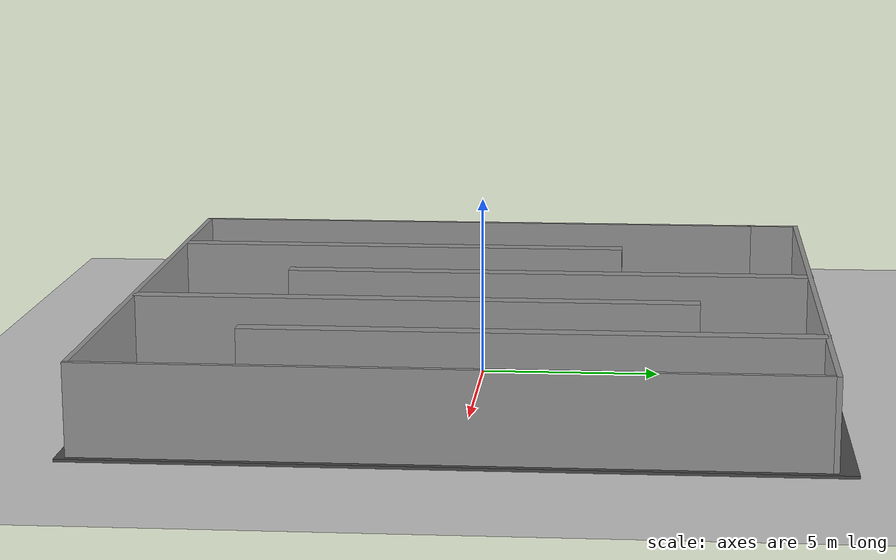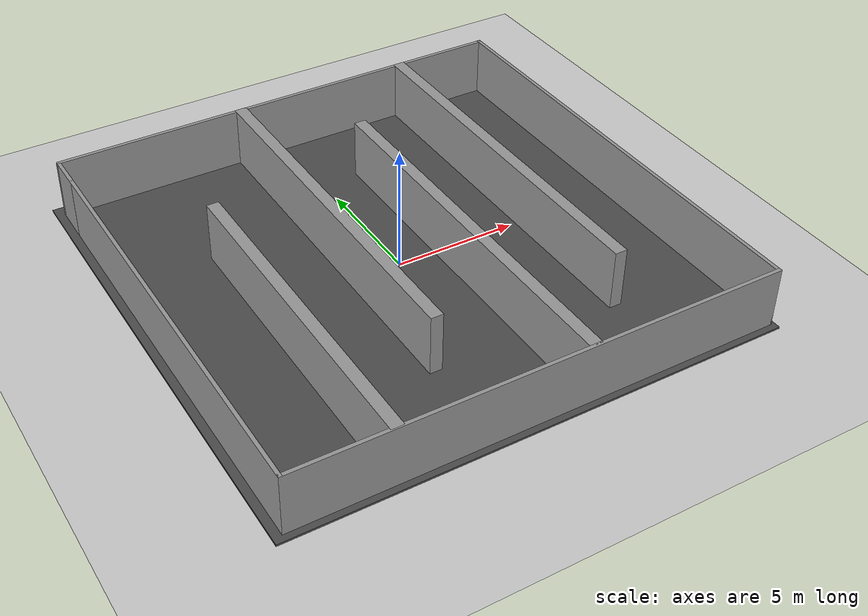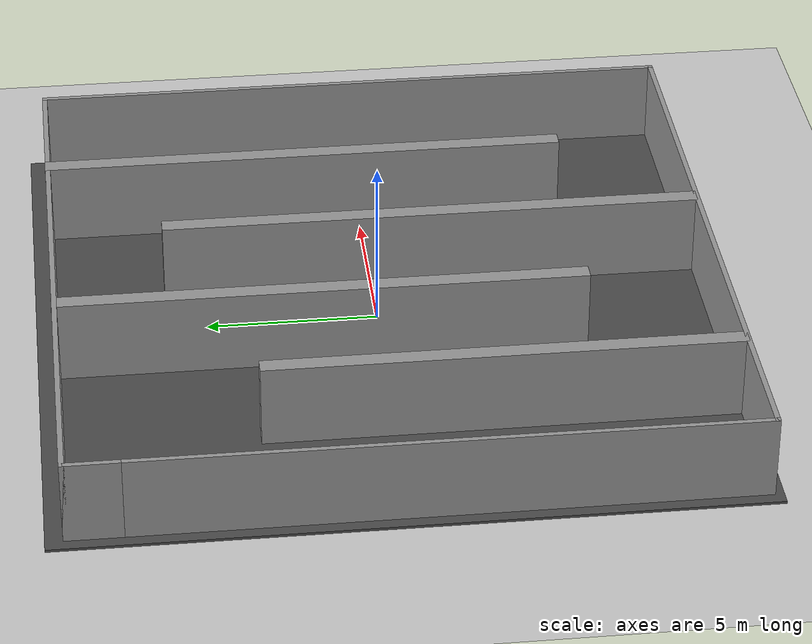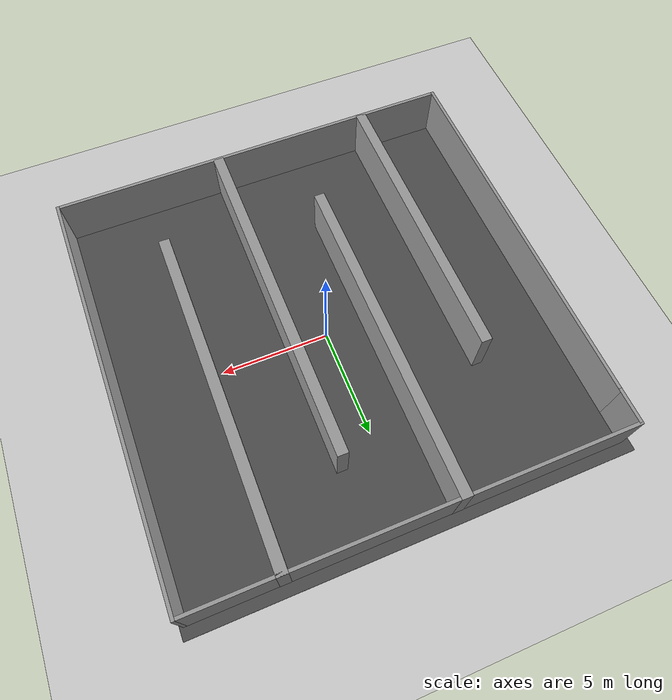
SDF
<sdf version="1.7">
 <world name="default">
  <light name="sun" type="directional">
   <pose>0 0 10 0 -0 0</pose>
   <diffuse>0.8 0.8 0.8 1</diffuse>
   <specular>0.2 0.2 0.2 1</specular>
   <attenuation>
    <range>1000</range>
    <constant>0.9</constant>
    <linear>0.01</linear>
    <quadratic>0.001</quadratic>
   </attenuation>
   <direction>-0.5 0.1 -0.9</direction>
   <spot><inner_angle>0</inner_angle><outer_angle>0</outer_angle><falloff>0</falloff></spot>
  </light>
  <model name="ground_plane">
   <static>1</static>
   <link name="link">
    <collision name="collision">
     <geometry><plane><normal>0 0 1</normal><size>100 100</size></plane></geometry>
     <surface><friction><ode><mu>100</mu><mu2>50</mu2></ode></friction></surface>
    </collision>
    <visual name="visual">
     <cast_shadows>0</cast_shadows>
     <geometry><plane><normal>0 0 1</normal><size>100 100</size></plane></geometry>
     <material>
      <script><uri>file://media/materials/scripts/gazebo.material</uri><name>Gazebo/Grey</name></script>
     </material>
    </visual>
    <velocity_decay><linear>0</linear><angular>0</angular></velocity_decay>
   </link>
  </model>
  <physics type="ode">
   <max_step_size>0.01</max_step_size>
   <real_time_factor>1</real_time_factor>
   <real_time_update_rate>100</real_time_update_rate>
  </physics>
  <scene><ambient>0.4 0.4 0.4 1</ambient><background>0.7 0.7 0.7 1</background><shadows>1</shadows></scene>
  <model name="asphalt_plane">
   <static>1</static>
   <link name="link">
    <collision name="collision"><geometry><box><size>20 20 0.1</size></box></geometry></collision>
    <visual name="visual">
     <cast_shadows>0</cast_shadows>
     <geometry><box><size>20 20 0.1</size></box></geometry>
     <material>
      <script>
       <uri>model://asphalt_plane/materials/scripts</uri>
       <uri>model://asphalt_plane/materials/textures</uri>
       <name>vrc/asphalt</name>
      </script>
     </material>
    </visual>
    <velocity_decay><linear>0</linear><angular>0</angular></velocity_decay>
   </link>
   <pose>-0.182107 -0.043902 0 0 -0 0</pose>
  </model>
  <gravity>0 0 -9.8</gravity>
  <magnetic_field>6e-06 2.3e-05 -4.2e-05</magnetic_field>
  <atmosphere type="adiabatic"/>
  <spherical_coordinates>
   <surface_model>EARTH_WGS84</surface_model>
   <latitude_deg>0</latitude_deg>
   <longitude_deg>0</longitude_deg>
   <elevation>0</elevation>
   <heading_deg>0</heading_deg>
  </spherical_coordinates>
  <model name="Walls">
   <pose>-0.097006 -0.157602 0 0 -0 0</pose>
   <link name="Wall_17">
    <collision name="Wall_17_Collision">
     <geometry><box><size>13.6 0.5 2.5</size></box></geometry>
     <pose>0 0 1.25 0 -0 0</pose>
    </collision>
    <visual name="Wall_17_Visual">
     <pose>0 0 1.25 0 -0 0</pose>
     <geometry><box><size>13.6 0.5 2.5</size></box></geometry>
     <material>
      <script><uri>file://media/materials/scripts/gazebo.material</uri><name>Gazebo/Grey</name></script>
      <ambient>1 1 1 1</ambient>
     </material>
     <meta><layer>0</layer></meta>
    </visual>
    <pose>-5.674 -2.77339 0 0 -0 1.5708</pose>
   </link>
   <link name="Wall_2">
    <collision name="Wall_2_Collision">
     <geometry><box><size>17.75 0.15 2.5</size></box></geometry>
     <pose>0 0 1.25 0 -0 0</pose>
    </collision>
    <visual name="Wall_2_Visual">
     <pose>0 0 1.25 0 -0 0</pose>
     <geometry><box><size>17.75 0.15 2.5</size></box></geometry>
     <material>
      <script><uri>file://media/materials/scripts/gazebo.material</uri><name>Gazebo/Grey</name></script>
      <ambient>1 1 1 1</ambient>
     </material>
     <meta><layer>0</layer></meta>
    </visual>
    <pose>-9.675 -0.754597 0 0 -0 -1.5708</pose>
   </link>
   <link name="Wall_20">
    <collision name="Wall_20_Collision">
     <geometry><box><size>15.35 0.5 2.5</size></box></geometry>
     <pose>0 0 1.25 0 -0 0</pose>
    </collision>
    <visual name="Wall_20_Visual">
     <pose>0 0 1.25 0 -0 0</pose>
     <geometry><box><size>15.35 0.5 2.5</size></box></geometry>
     <material>
      <script><uri>file://media/materials/scripts/gazebo.material</uri><name>Gazebo/Grey</name></script>
      <ambient>1 1 1 1</ambient>
     </material>
     <meta><layer>0</layer></meta>
    </visual>
    <pose>-1.90651 1.95409 0 0 -0 -1.5708</pose>
   </link>
   <link name="Wall_22">
    <collision name="Wall_22_Collision">
     <geometry><box><size>15.8496 0.5 2.5</size></box></geometry>
     <pose>0 0 1.25 0 -0 0</pose>
    </collision>
    <visual name="Wall_22_Visual">
     <pose>0 0 1.25 0 -0 0</pose>
     <geometry><box><size>15.8496 0.5 2.5</size></box></geometry>
     <material>
      <script><uri>file://media/materials/scripts/gazebo.material</uri><name>Gazebo/Grey</name></script>
      <ambient>1 1 1 1</ambient>
     </material>
     <meta><layer>0</layer></meta>
    </visual>
    <pose>1.83849 -1.6174 0 0 -0 1.5708</pose>
   </link>
   <link name="Wall_24">
    <collision name="Wall_24_Collision">
     <geometry><box><size>15.6 0.5 2.5</size></box></geometry>
     <pose>0 0 1.25 0 -0 0</pose>
    </collision>
    <visual name="Wall_24_Visual">
     <pose>0 0 1.25 0 -0 0</pose>
     <geometry><box><size>15.6 0.5 2.5</size></box></geometry>
     <material>
      <script><uri>file://media/materials/scripts/gazebo.material</uri><name>Gazebo/Grey</name></script>
      <ambient>1 1 1 1</ambient>
     </material>
     <meta><layer>0</layer></meta>
    </visual>
    <pose>5.58349 1.8296 0 0 -0 -1.5708</pose>
   </link>
   <link name="Wall_3">
    <collision name="Wall_3_Collision">
     <geometry><box><size>19.5 0.15 2.5</size></box></geometry>
     <pose>0 0 1.25 0 -0 0</pose>
    </collision>
    <visual name="Wall_3_Visual">
     <pose>0 0 1.25 0 -0 0</pose>
     <geometry><box><size>19.5 0.15 2.5</size></box></geometry>
     <material>
      <script><uri>file://media/materials/scripts/gazebo.material</uri><name>Gazebo/Grey</name></script>
      <ambient>1 1 1 1</ambient>
     </material>
     <meta><layer>0</layer></meta>
    </visual>
    <pose>-0 -9.5546 0 0 -0 0</pose>
   </link>
   <link name="Wall_4">
    <collision name="Wall_4_Collision">
     <geometry><box><size>19.25 0.15 2.5</size></box></geometry>
     <pose>0 0 1.25 0 -0 0</pose>
    </collision>
    <visual name="Wall_4_Visual">
     <pose>0 0 1.25 0 -0 0</pose>
     <geometry><box><size>19.25 0.15 2.5</size></box></geometry>
     <material>
      <script><uri>file://media/materials/scripts/gazebo.material</uri><name>Gazebo/Grey</name></script>
      <ambient>1 1 1 1</ambient>
     </material>
     <meta><layer>0</layer></meta>
    </visual>
    <pose>9.675 -0.004597 0 0 -0 1.5708</pose>
   </link>
   <link name="Wall_5">
    <collision name="Wall_5_Collision">
     <geometry><box><size>19.5 0.15 2.5</size></box></geometry>
     <pose>0 0 1.25 0 -0 0</pose>
    </collision>
    <visual name="Wall_5_Visual">
     <pose>0 0 1.25 0 -0 0</pose>
     <geometry><box><size>19.5 0.15 2.5</size></box></geometry>
     <material>
      <script><uri>file://media/materials/scripts/gazebo.material</uri><name>Gazebo/Grey</name></script>
      <ambient>1 1 1 1</ambient>
     </material>
     <meta><layer>0</layer></meta>
    </visual>
    <pose>-0 9.5454 0 0 -0 3.14159</pose>
   </link>
   <link name="Wall_6">
    <collision name="Wall_6_Collision">
     <geometry><box><size>1.65 0.15 2.5</size></box></geometry>
     <pose>0 0 1.25 0 -0 0</pose>
    </collision>
    <visual name="Wall_6_Visual">
     <pose>0 0 1.25 0 -0 0</pose>
     <geometry><box><size>1.65 0.15 2.5</size></box></geometry>
     <material>
      <script><uri>file://media/materials/scripts/gazebo.material</uri><name>Gazebo/Grey</name></script>
      <ambient>1 1 1 1</ambient>
     </material>
     <meta><layer>0</layer></meta>
    </visual>
    <pose>-9.675 8.7954 0 0 -0 -1.5708</pose>
   </link>
   <static>1</static>
  </model>
 </world>
</sdf>
